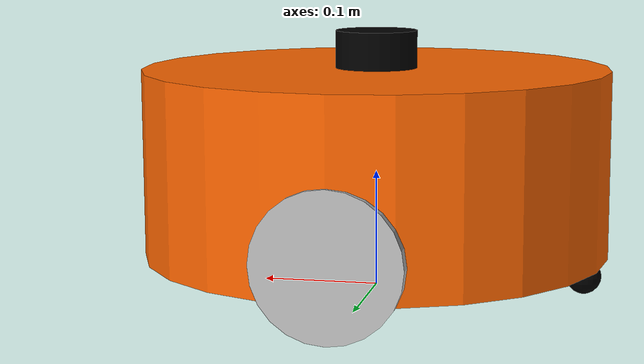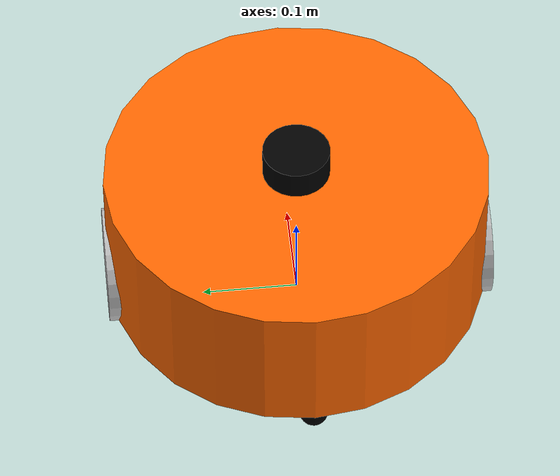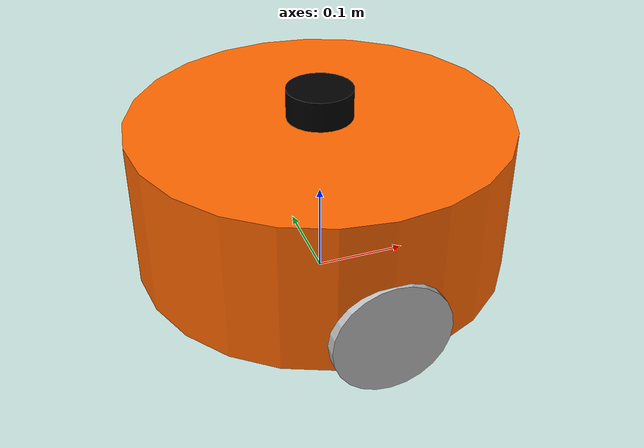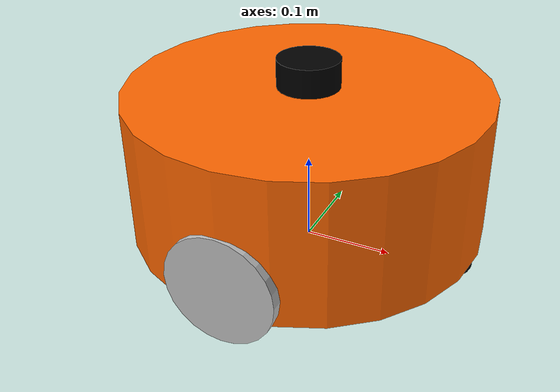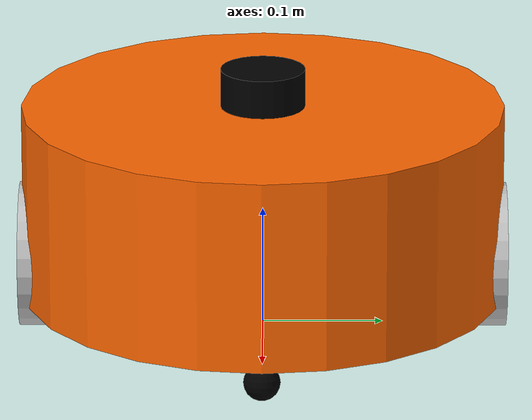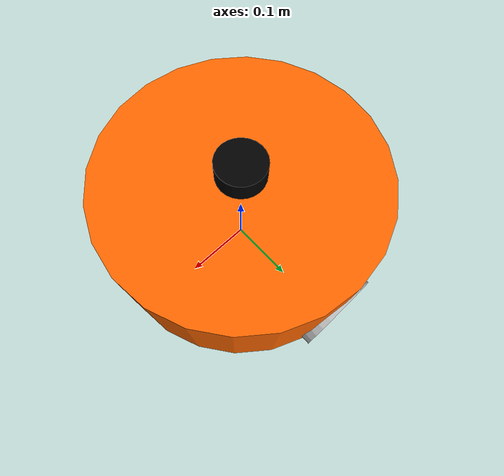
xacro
<?xml version="1.0"?>
<robot name="robot" xmlns:xacro="http://www.ros.org/wiki/xacro">

    <xacro:include filename="$(find robot_description)/xacro/robot_base.xacro" />
    <xacro:include filename="$(find robot_description)/xacro/sensors/lidar.xacro" />

    <xacro:property name="laser_offset_x" value="0.0" />
    <xacro:property name="laser_offset_y" value="0.0" />
    <xacro:property name="laser_offset_z" value="0.082" />

    <robot_base/>

    <!-- laser -->
    <joint name="laser_joint" type="fixed">
        <origin xyz="${laser_offset_x} ${laser_offset_y} ${laser_offset_z}" rpy="0 0 0" />
        <parent link="base_link"/>
        <child link="laser_link"/>
    </joint>

    <xacro:rplidar prefix="laser"/>

</robot>

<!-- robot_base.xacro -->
<robot name="robot" xmlns:xacro="http://www.ros.org/wiki/xacro">

    <!-- PROPERTY LIST -->
    <xacro:property name="M_PI" value="3.1415926"/>
    <xacro:property name="base_radius" value="0.20"/>
    <xacro:property name="base_length" value="0.16"/>

    <xacro:property name="wheel_radius" value="0.06"/>
    <xacro:property name="wheel_length" value="0.025"/>
    <xacro:property name="wheel_joint_y" value="0.19"/>
    <xacro:property name="wheel_joint_z" value="0.05"/>

    <xacro:property name="caster_radius" value="0.015"/> <!-- wheel_radius - ( base_length/2 - wheel_joint_z) -->
    <xacro:property name="caster_joint_x" value="0.18"/>

    <!-- Defining the colors used in this robot -->
    <material name="yellow">
        <color rgba="1 0.4 0 1"/>
    </material>
    <material name="black">
        <color rgba="0 0 0 0.95"/>
    </material>
    <material name="gray">
        <color rgba="0.75 0.75 0.75 1"/>
    </material>

    <!-- Macro for robot wheel -->
    <xacro:macro name="wheel" params="prefix reflect">
        <joint name="${prefix}_wheel_joint" type="continuous">
            <origin xyz="0 ${reflect*wheel_joint_y} ${-wheel_joint_z}" rpy="0 0 0"/>
            <parent link="base_link"/>
            <child link="${prefix}_wheel_link"/>
            <axis xyz="0 1 0"/>
        </joint>

        <link name="${prefix}_wheel_link">
            <visual>
                <origin xyz="0 0 0" rpy="${M_PI/2} 0 0" />
                <geometry>
                    <cylinder radius="${wheel_radius}" length = "${wheel_length}"/>
                </geometry>
                <material name="gray" />
            </visual>
        </link>
    </xacro:macro>

    <!-- Macro for robot caster -->
    <xacro:macro name="caster" params="prefix reflect">
        <joint name="${prefix}_caster_joint" type="continuous">
            <origin xyz="${reflect*caster_joint_x} 0 ${-(base_length/2 + caster_radius)}" rpy="0 0 0"/>
            <parent link="base_link"/>
            <child link="${prefix}_caster_link"/>
            <axis xyz="0 1 0"/>
        </joint>

        <link name="${prefix}_caster_link">
            <visual>
                <origin xyz="0 0 0" rpy="0 0 0"/>
                <geometry>
                    <sphere radius="${caster_radius}" />
                </geometry>
                <material name="black" />
            </visual>
        </link>
    </xacro:macro>

    <xacro:macro name="robot_base">
        <link name="base_footprint">
            <visual>
                <origin xyz="0 0 0" rpy="0 0 0" />
                <geometry>
                    <box size="0.001 0.001 0.001" />
                </geometry>
            </visual>
        </link>

        <joint name="base_footprint_joint" type="fixed">
            <origin xyz="0 0 ${base_length/2 + caster_radius*2}" rpy="0 0 0" />
            <parent link="base_footprint"/>
            <child link="base_link" />
        </joint>

        <link name="base_link">
            <visual>
                <origin xyz=" 0 0 0" rpy="0 0 0" />
                <geometry>
                    <cylinder length="${base_length}" radius="${base_radius}"/>
                </geometry>
                <material name="yellow" />
            </visual>
        </link>

        <wheel prefix="left" reflect="-1"/>
        <wheel prefix="right" reflect="1"/>

        <caster prefix="front" reflect="-1"/>
        <caster prefix="back" reflect="1"/>
    </xacro:macro>
</robot>

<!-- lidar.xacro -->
<robot name="laser" xmlns:xacro="http://www.ros.org/wiki/xacro" >

	<xacro:macro name="rplidar" params="prefix:=laser">
		<link name="${prefix}_link">
			<visual>
				<origin xyz=" 0 0 0 " rpy="0 0 0" />
				<geometry>
					<cylinder length="0.06" radius="0.035"/>
				</geometry>
				<material name="black"/>
			</visual>
		</link>
	</xacro:macro>

</robot>
